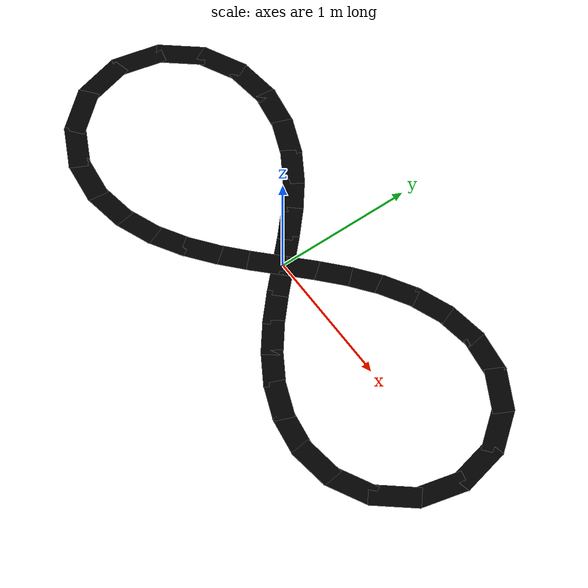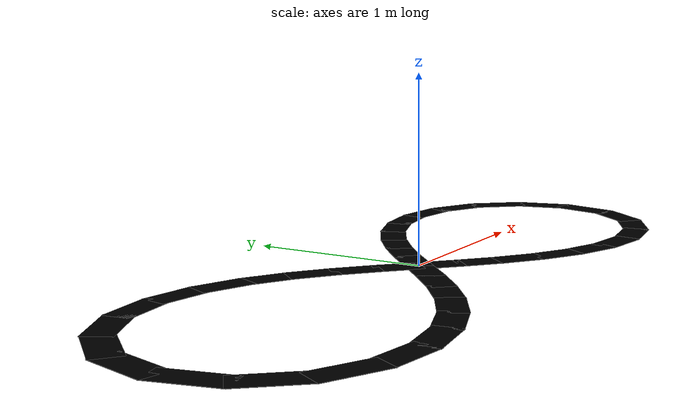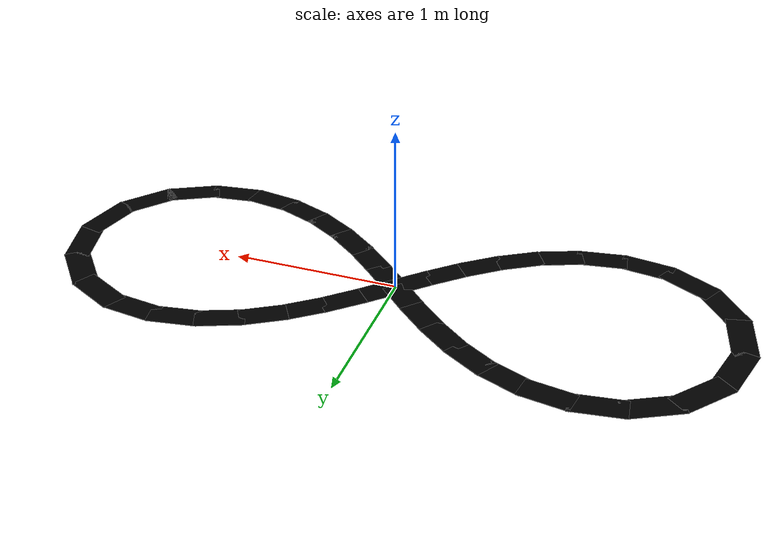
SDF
<?xml version="1.0" ?>
<sdf version="1.6">
  <model name="line_track">
    <static>true</static>
    <link name="track_link">

      <visual name="seg_0">
        <pose>1.9641 0.1508 0.001 0 0 1.8045</pose>
        <geometry><box><size>0.3566 0.15 0.002</size></box></geometry>
        <material><ambient>0 0 0 1</ambient><diffuse>0 0 0 1</diffuse></material>
      </visual>
      <visual name="seg_1">
        <pose>1.8323 0.4191 0.001 0 0 2.2557</pose>
        <geometry><box><size>0.3488 0.15 0.002</size></box></geometry>
        <material><ambient>0 0 0 1</ambient><diffuse>0 0 0 1</diffuse></material>
      </visual>
      <visual name="seg_2">
        <pose>1.6069 0.6037 0.001 0 0 2.6632</pose>
        <geometry><box><size>0.3353 0.15 0.002</size></box></geometry>
        <material><ambient>0 0 0 1</ambient><diffuse>0 0 0 1</diffuse></material>
      </visual>
      <visual name="seg_3">
        <pose>1.3400 0.6888 0.001 0 0 3.0111</pose>
        <geometry><box><size>0.3189 0.15 0.002</size></box></geometry>
        <material><ambient>0 0 0 1</ambient><diffuse>0 0 0 1</diffuse></material>
      </visual>
      <visual name="seg_4">
        <pose>1.0727 0.6868 0.001 0 0 -2.9881</pose>
        <geometry><box><size>0.3023 0.15 0.002</size></box></geometry>
        <material><ambient>0 0 0 1</ambient><diffuse>0 0 0 1</diffuse></material>
      </visual>
      <visual name="seg_5">
        <pose>0.8267 0.6207 0.001 0 0 -2.7651</pose>
        <geometry><box><size>0.2872 0.15 0.002</size></box></geometry>
        <material><ambient>0 0 0 1</ambient><diffuse>0 0 0 1</diffuse></material>
      </visual>
      <visual name="seg_6">
        <pose>0.6083 0.5129 0.001 0 0 -2.5968</pose>
        <geometry><box><size>0.2748 0.15 0.002</size></box></geometry>
        <material><ambient>0 0 0 1</ambient><diffuse>0 0 0 1</diffuse></material>
      </visual>
      <visual name="seg_7">
        <pose>0.4153 0.3798 0.001 0 0 -2.4769</pose>
        <geometry><box><size>0.2654 0.15 0.002</size></box></geometry>
        <material><ambient>0 0 0 1</ambient><diffuse>0 0 0 1</diffuse></material>
      </visual>
      <visual name="seg_8">
        <pose>0.2414 0.2325 0.001 0 0 -2.3999</pose>
        <geometry><box><size>0.2591 0.15 0.002</size></box></geometry>
        <material><ambient>0 0 0 1</ambient><diffuse>0 0 0 1</diffuse></material>
      </visual>
      <visual name="seg_9">
        <pose>0.0792 0.0782 0.001 0 0 -2.3624</pose>
        <geometry><box><size>0.2560 0.15 0.002</size></box></geometry>
        <material><ambient>0 0 0 1</ambient><diffuse>0 0 0 1</diffuse></material>
      </visual>
      <visual name="seg_10">
        <pose>-0.0792 -0.0782 0.001 0 0 -2.3624</pose>
        <geometry><box><size>0.2560 0.15 0.002</size></box></geometry>
        <material><ambient>0 0 0 1</ambient><diffuse>0 0 0 1</diffuse></material>
      </visual>
      <visual name="seg_11">
        <pose>-0.2414 -0.2325 0.001 0 0 -2.3999</pose>
        <geometry><box><size>0.2591 0.15 0.002</size></box></geometry>
        <material><ambient>0 0 0 1</ambient><diffuse>0 0 0 1</diffuse></material>
      </visual>
      <visual name="seg_12">
        <pose>-0.4153 -0.3798 0.001 0 0 -2.4769</pose>
        <geometry><box><size>0.2654 0.15 0.002</size></box></geometry>
        <material><ambient>0 0 0 1</ambient><diffuse>0 0 0 1</diffuse></material>
      </visual>
      <visual name="seg_13">
        <pose>-0.6083 -0.5129 0.001 0 0 -2.5968</pose>
        <geometry><box><size>0.2748 0.15 0.002</size></box></geometry>
        <material><ambient>0 0 0 1</ambient><diffuse>0 0 0 1</diffuse></material>
      </visual>
      <visual name="seg_14">
        <pose>-0.8267 -0.6207 0.001 0 0 -2.7651</pose>
        <geometry><box><size>0.2872 0.15 0.002</size></box></geometry>
        <material><ambient>0 0 0 1</ambient><diffuse>0 0 0 1</diffuse></material>
      </visual>
      <visual name="seg_15">
        <pose>-1.0727 -0.6868 0.001 0 0 -2.9881</pose>
        <geometry><box><size>0.3023 0.15 0.002</size></box></geometry>
        <material><ambient>0 0 0 1</ambient><diffuse>0 0 0 1</diffuse></material>
      </visual>
      <visual name="seg_16">
        <pose>-1.3400 -0.6888 0.001 0 0 3.0111</pose>
        <geometry><box><size>0.3189 0.15 0.002</size></box></geometry>
        <material><ambient>0 0 0 1</ambient><diffuse>0 0 0 1</diffuse></material>
      </visual>
      <visual name="seg_17">
        <pose>-1.6069 -0.6037 0.001 0 0 2.6632</pose>
        <geometry><box><size>0.3353 0.15 0.002</size></box></geometry>
        <material><ambient>0 0 0 1</ambient><diffuse>0 0 0 1</diffuse></material>
      </visual>
      <visual name="seg_18">
        <pose>-1.8323 -0.4191 0.001 0 0 2.2557</pose>
        <geometry><box><size>0.3488 0.15 0.002</size></box></geometry>
        <material><ambient>0 0 0 1</ambient><diffuse>0 0 0 1</diffuse></material>
      </visual>
      <visual name="seg_19">
        <pose>-1.9641 -0.1508 0.001 0 0 1.8045</pose>
        <geometry><box><size>0.3566 0.15 0.002</size></box></geometry>
        <material><ambient>0 0 0 1</ambient><diffuse>0 0 0 1</diffuse></material>
      </visual>
      <visual name="seg_20">
        <pose>-1.9641 0.1508 0.001 0 0 1.3371</pose>
        <geometry><box><size>0.3566 0.15 0.002</size></box></geometry>
        <material><ambient>0 0 0 1</ambient><diffuse>0 0 0 1</diffuse></material>
      </visual>
      <visual name="seg_21">
        <pose>-1.8323 0.4191 0.001 0 0 0.8859</pose>
        <geometry><box><size>0.3488 0.15 0.002</size></box></geometry>
        <material><ambient>0 0 0 1</ambient><diffuse>0 0 0 1</diffuse></material>
      </visual>
      <visual name="seg_22">
        <pose>-1.6069 0.6037 0.001 0 0 0.4784</pose>
        <geometry><box><size>0.3353 0.15 0.002</size></box></geometry>
        <material><ambient>0 0 0 1</ambient><diffuse>0 0 0 1</diffuse></material>
      </visual>
      <visual name="seg_23">
        <pose>-1.3400 0.6888 0.001 0 0 0.1305</pose>
        <geometry><box><size>0.3189 0.15 0.002</size></box></geometry>
        <material><ambient>0 0 0 1</ambient><diffuse>0 0 0 1</diffuse></material>
      </visual>
      <visual name="seg_24">
        <pose>-1.0727 0.6868 0.001 0 0 -0.1535</pose>
        <geometry><box><size>0.3023 0.15 0.002</size></box></geometry>
        <material><ambient>0 0 0 1</ambient><diffuse>0 0 0 1</diffuse></material>
      </visual>
      <visual name="seg_25">
        <pose>-0.8267 0.6207 0.001 0 0 -0.3765</pose>
        <geometry><box><size>0.2872 0.15 0.002</size></box></geometry>
        <material><ambient>0 0 0 1</ambient><diffuse>0 0 0 1</diffuse></material>
      </visual>
      <visual name="seg_26">
        <pose>-0.6083 0.5129 0.001 0 0 -0.5448</pose>
        <geometry><box><size>0.2748 0.15 0.002</size></box></geometry>
        <material><ambient>0 0 0 1</ambient><diffuse>0 0 0 1</diffuse></material>
      </visual>
      <visual name="seg_27">
        <pose>-0.4153 0.3798 0.001 0 0 -0.6647</pose>
        <geometry><box><size>0.2654 0.15 0.002</size></box></geometry>
        <material><ambient>0 0 0 1</ambient><diffuse>0 0 0 1</diffuse></material>
      </visual>
      <visual name="seg_28">
        <pose>-0.2414 0.2325 0.001 0 0 -0.7417</pose>
        <geometry><box><size>0.2591 0.15 0.002</size></box></geometry>
        <material><ambient>0 0 0 1</ambient><diffuse>0 0 0 1</diffuse></material>
      </visual>
      <visual name="seg_29">
        <pose>-0.0792 0.0782 0.001 0 0 -0.7792</pose>
        <geometry><box><size>0.2560 0.15 0.002</size></box></geometry>
        <material><ambient>0 0 0 1</ambient><diffuse>0 0 0 1</diffuse></material>
      </visual>
      <visual name="seg_30">
        <pose>0.0792 -0.0782 0.001 0 0 -0.7792</pose>
        <geometry><box><size>0.2560 0.15 0.002</size></box></geometry>
        <material><ambient>0 0 0 1</ambient><diffuse>0 0 0 1</diffuse></material>
      </visual>
      <visual name="seg_31">
        <pose>0.2414 -0.2325 0.001 0 0 -0.7417</pose>
        <geometry><box><size>0.2591 0.15 0.002</size></box></geometry>
        <material><ambient>0 0 0 1</ambient><diffuse>0 0 0 1</diffuse></material>
      </visual>
      <visual name="seg_32">
        <pose>0.4153 -0.3798 0.001 0 0 -0.6647</pose>
        <geometry><box><size>0.2654 0.15 0.002</size></box></geometry>
        <material><ambient>0 0 0 1</ambient><diffuse>0 0 0 1</diffuse></material>
      </visual>
      <visual name="seg_33">
        <pose>0.6083 -0.5129 0.001 0 0 -0.5448</pose>
        <geometry><box><size>0.2748 0.15 0.002</size></box></geometry>
        <material><ambient>0 0 0 1</ambient><diffuse>0 0 0 1</diffuse></material>
      </visual>
      <visual name="seg_34">
        <pose>0.8267 -0.6207 0.001 0 0 -0.3765</pose>
        <geometry><box><size>0.2872 0.15 0.002</size></box></geometry>
        <material><ambient>0 0 0 1</ambient><diffuse>0 0 0 1</diffuse></material>
      </visual>
      <visual name="seg_35">
        <pose>1.0727 -0.6868 0.001 0 0 -0.1535</pose>
        <geometry><box><size>0.3023 0.15 0.002</size></box></geometry>
        <material><ambient>0 0 0 1</ambient><diffuse>0 0 0 1</diffuse></material>
      </visual>
      <visual name="seg_36">
        <pose>1.3400 -0.6888 0.001 0 0 0.1305</pose>
        <geometry><box><size>0.3189 0.15 0.002</size></box></geometry>
        <material><ambient>0 0 0 1</ambient><diffuse>0 0 0 1</diffuse></material>
      </visual>
      <visual name="seg_37">
        <pose>1.6069 -0.6037 0.001 0 0 0.4784</pose>
        <geometry><box><size>0.3353 0.15 0.002</size></box></geometry>
        <material><ambient>0 0 0 1</ambient><diffuse>0 0 0 1</diffuse></material>
      </visual>
      <visual name="seg_38">
        <pose>1.8323 -0.4191 0.001 0 0 0.8859</pose>
        <geometry><box><size>0.3488 0.15 0.002</size></box></geometry>
        <material><ambient>0 0 0 1</ambient><diffuse>0 0 0 1</diffuse></material>
      </visual>
      <visual name="seg_39">
        <pose>1.9641 -0.1508 0.001 0 0 1.3371</pose>
        <geometry><box><size>0.3566 0.15 0.002</size></box></geometry>
        <material><ambient>0 0 0 1</ambient><diffuse>0 0 0 1</diffuse></material>
      </visual>

    </link>
  </model>
</sdf>
